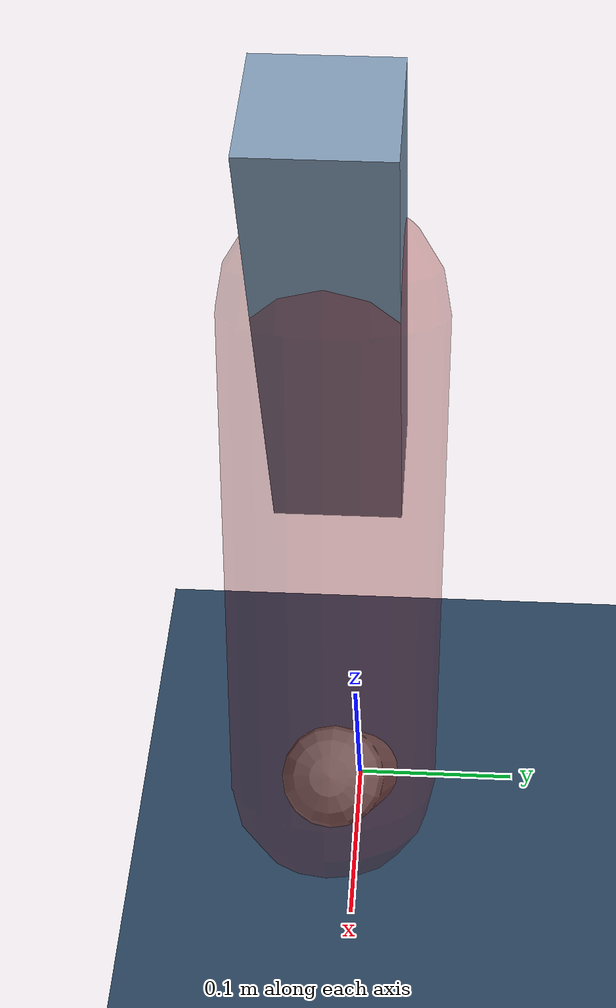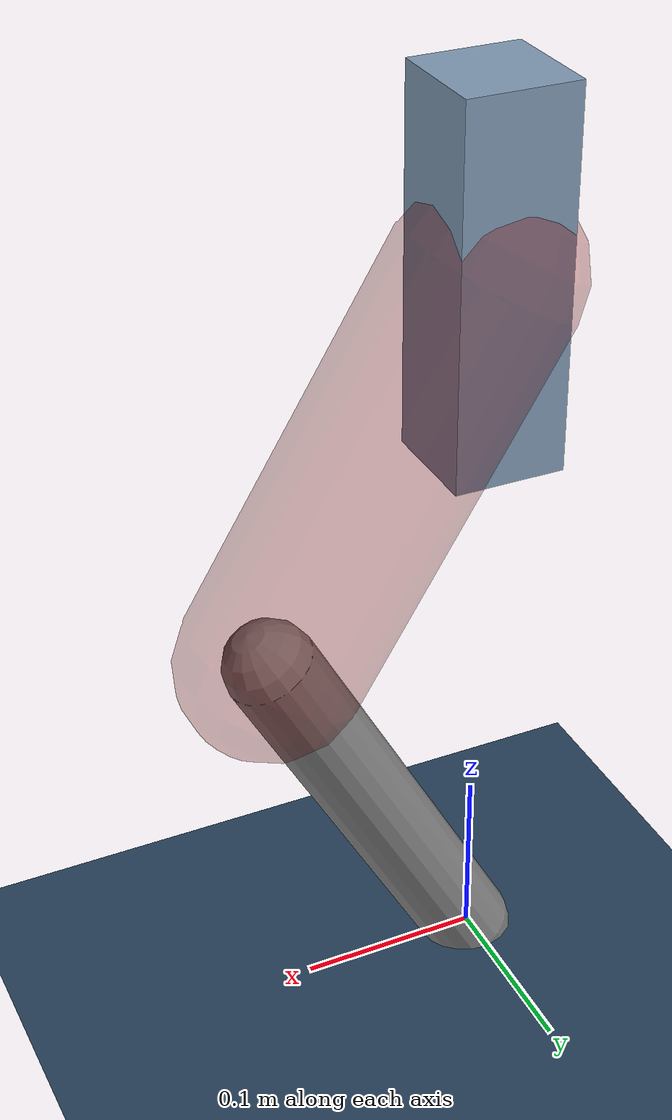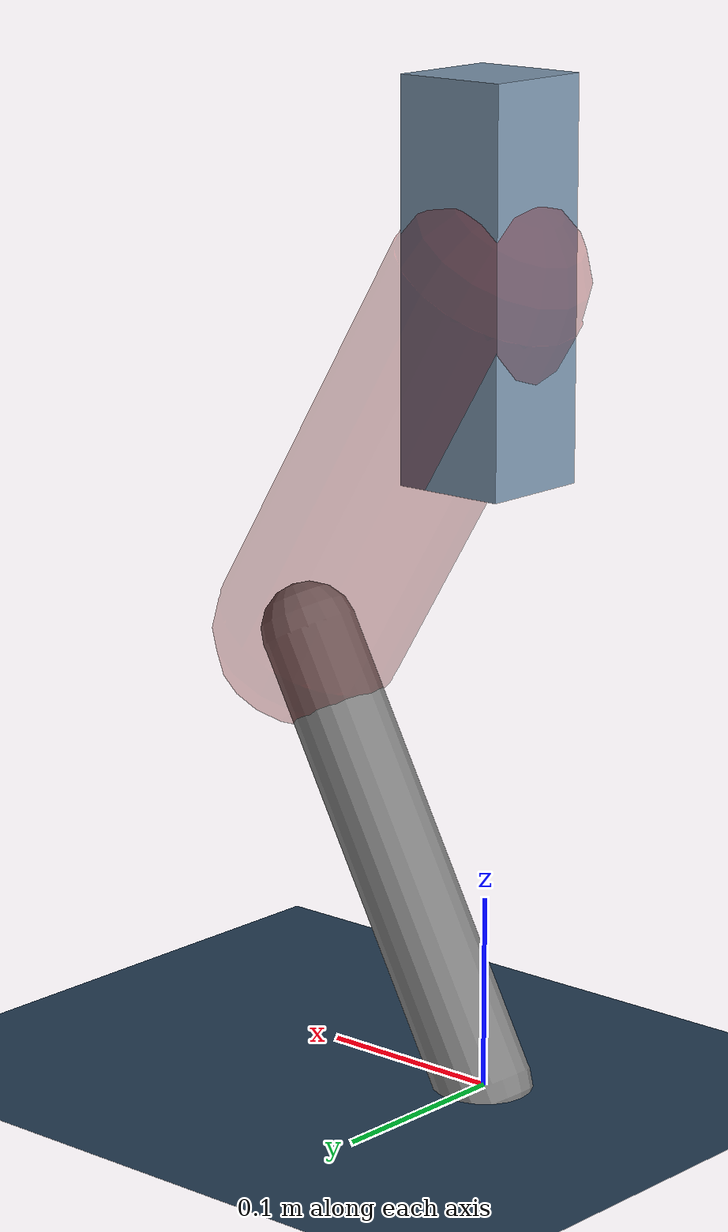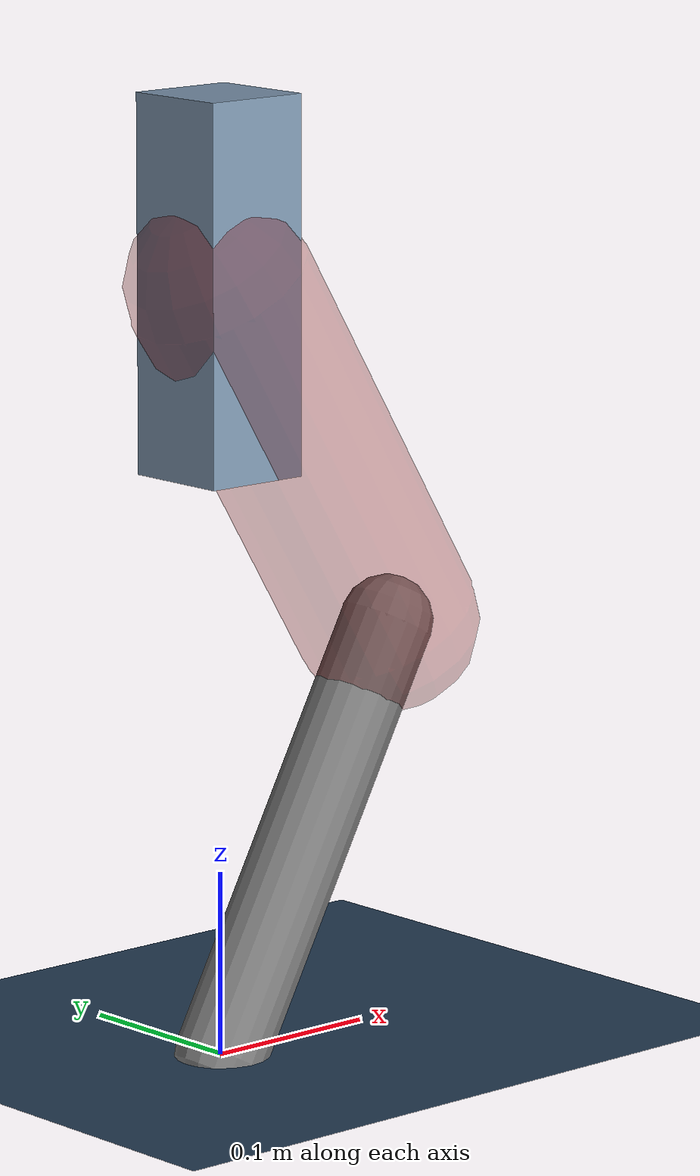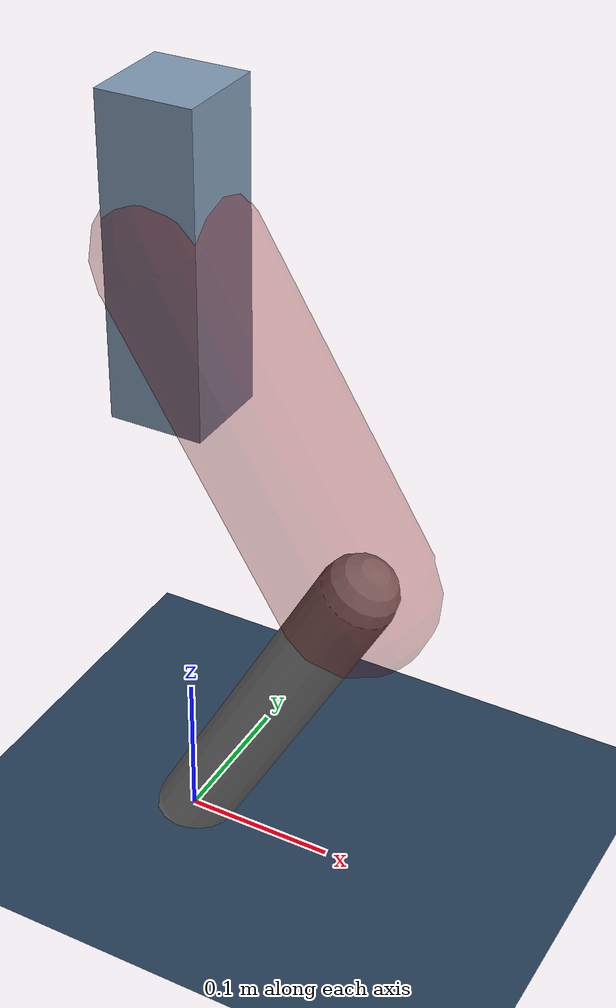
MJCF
<mujoco model="Hopper2D">
	<compiler inertiafromgeom="true" angle="radian" />
	<option timestep="0.001" integrator="implicit" cone="elliptic" solver="Newton" tolerance="1e-10" />

	<default>
		<geom contype="1" conaffinity="1" condim="3" friction="2 0.005 0.0001" solref="0.005 1" />
		<joint limited="true" damping="0.1" />
	</default>

	<asset>
		<texture name="skybox" type="skybox" builtin="gradient" rgb1=".4 .6 .8" rgb2="0 0 0" width="800" height="800" />
		<texture name="grid" type="2d" builtin="checker" rgb1=".1 .2 .3" rgb2=".2 .3 .4" width="300" height="300" mark="edge" markrgb=".2 .3 .4" />
		<material name="ground" texture="grid" texrepeat="1 1" texuniform="true" reflectance="0.1" />
		<material name="leg" rgba="0.5 0.6 0.7 1" />
	</asset>

	<worldbody>

		<geom name="floor" type="plane" size="5 5 0.25" material="ground" />

		<light directional="false" diffuse="0.8 0.8 0.8" specular="0.3 0.3 0.3" pos="0 0 2" dir="0 0 -1" />
		<light mode="targetbodycom" target="base" directional="false" diffuse="0.8 0.8 0.8" specular="0.3 0.3 0.3" pos="0 0 2" dir="0 0 -1" />

		<camera name="fixed" pos="0 -2 1" xyaxes="1 0 0 0 0 1" />
		<camera name="tracking" mode="trackcom" pos="0 -3 1" />

		<body name="root" pos="0 0 0.4132006147526268">
			<joint name="slide_x" type="slide" axis="1 0 0" range="-100 100" />
			<joint name="slide_z" type="slide" axis="0 0 1" range="0 10" />

			<body name="base" pos="0 0 0">
				<geom name="torso" type="box" size="0.03 0.03 0.1" mass="2.586" material="leg" />

				<body name="link1" pos="0 0 0" euler="0 1.0225594369413424 0">
					<joint type="hinge" axis="0 -1 0" pos="0 0 0" name="hinge1" limited="true" range="-3.14 3.14" stiffness="0" damping="0.1" />
					<geom name="thigh" type="capsule" fromto="0 0 0 0.22746668871758244 0 0" size="0.05" rgba="0.5 0 0 0.3" mass="0.798566721793956" />

					<body name="link2" pos="0.22746668871758244 0 0" euler="0 1.044266864476376 0">
						<joint type="hinge" axis="0 -1 0" pos="0 0 0" name="hinge2" limited="true" range="-3.14 3.14" stiffness="0" damping="0.1" />
						<geom name="shank" type="capsule" fromto="0 0 0 0.24909107540364245 0 0" size="0.025" mass="0.44177286032291396" />

					</body>
				</body>
			</body>
		</body>
	</worldbody>

	<actuator>
		<motor name="torque1" joint="hinge1" ctrlrange="-103.98828753017 103.98828753017" ctrllimited="true" gear="1" />
		<motor name="torque2" joint="hinge2" ctrlrange="-42.40987996228263 42.40987996228263" ctrllimited="true" gear="1" />
	</actuator>
</mujoco>
